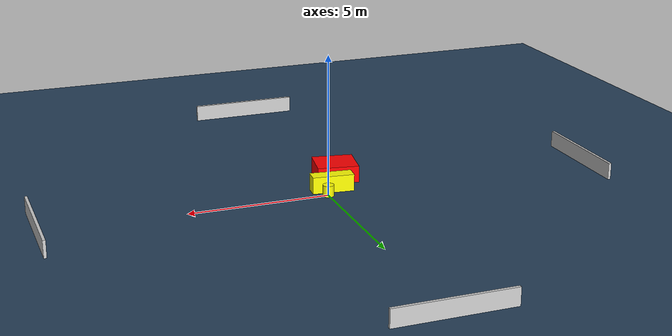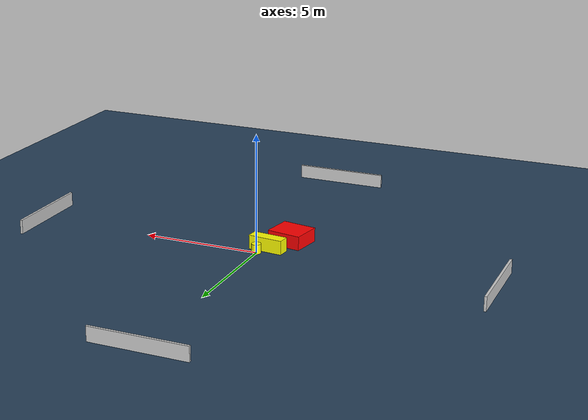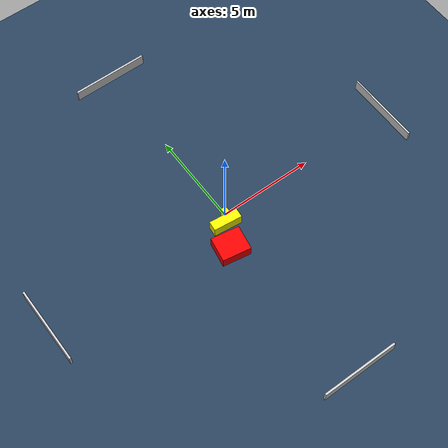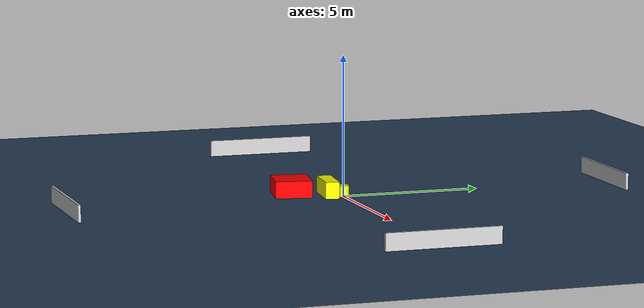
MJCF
<?xml version="1.0" ?>
<mujoco model="generated_environment">
  <option timestep="0.01" integrator="RK4" cone="elliptic"/>
  <default>
    <geom density="1"/>
  </default>
  <asset>
    <texture builtin="gradient" height="3072" name="skybox" rgb1="0.3 0.5 0.7" rgb2="0 0 0" type="skybox" width="512"/>
    <texture builtin="checker" height="300" name="groundplane" rgb1="0.2 0.3 0.4" rgb2="0.1 0.2 0.3" type="2d" width="300"/>
    <material name="groundplane" reflectance="0.2" texrepeat="5 5" texture="groundplane"/>
  </asset>
  <worldbody>
    <light dir="0 0 -1" directional="true" pos="0 0 1.5"/>
    <geom condim="3" friction="0.5 0.005 0.001" material="groundplane" name="floor" pos="0 0 0" size="0 0 0.05" type="plane"/>
    <body name="walls">
      <geom name="wall_1" condim="4" pos="-10.0 0.0 0.3" rgba="0.800000011920929 0.800000011920929 0.800000011920929 1.0" size="0.05 2.0 0.3" type="box"/>
      <geom name="wall_2" condim="4" pos="10.0 0.0 0.3" rgba="0.800000011920929 0.800000011920929 0.800000011920929 1.0" size="0.05 2.0 0.3" type="box"/>
      <geom name="wall_3" condim="4" pos="0.0 -10.0 0.3" rgba="0.800000011920929 0.800000011920929 0.800000011920929 1.0" size="2.0 0.05 0.3" type="box"/>
      <geom name="wall_4" condim="4" pos="0.0 10.0 0.3" rgba="0.800000011920929 0.800000011920929 0.800000011920929 1.0" size="2.0 0.05 0.3" type="box"/>
    </body>
    <body name="robot">
      <joint name="joint_x" type="slide" pos="0 0 0" axis="1 0 0"/>
      <joint name="joint_y" type="slide" pos="0 0 0" axis="0 1 0"/>
      <geom name="robot" type="cylinder" pos="0.0 0.0 0.2" size="0.2 0.2 0.0" mass="5.0" friction="1.0 0.005 0.0001" condim="4" rgba="1.0 1.0 0.0 1.0"/>
    </body>
    <body name="obstacle_1_movable">
      <geom name="obstacle_1_movable" condim="4" pos="-0.3080326430572144 -0.4690675914402061 0.3" euler="0 0 264.01568362586397" friction="0.0 0.005 0.001" rgba="1.0 1.0 0.0 1.0" size="0.2526148492410285 0.7443999948038469 0.3" type="box" mass="0.1"/>
      <joint type="free"/>
    </body>
    <body name="obstacle_2_static">
      <geom name="obstacle_2_static" condim="4" pos="-0.8747346333046263 -1.6526318110888327 0.3" euler="0 0 350.3571783705009" friction="0.0 0.005 0.001" rgba="1.0 0.0 0.0 1.0" size="0.7408547416615698 0.6520820810413 0.3" type="box"/>
    </body>
  </worldbody>
  <actuator>
    <motor name="actuator_x" joint="joint_x" gear="1" ctrlrange="-1 1"/>
    <motor name="actuator_y" joint="joint_y" gear="1" ctrlrange="-1 1"/>
  </actuator>
</mujoco>
